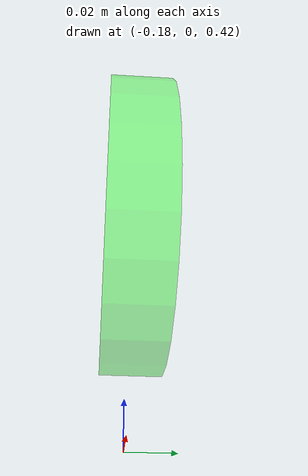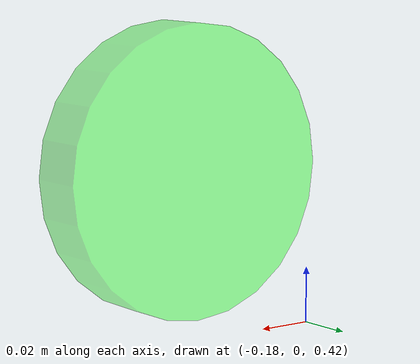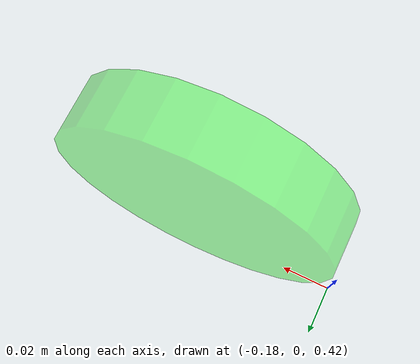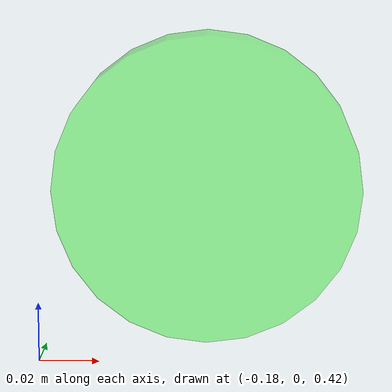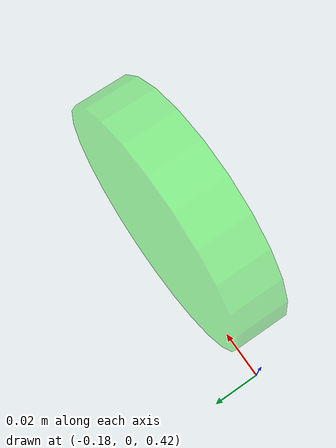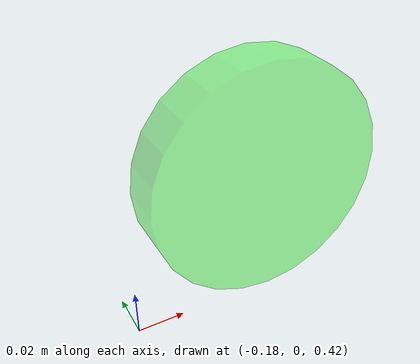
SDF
<?xml version="1.0" ?>
<sdf version="1.5">

  <model name="Green_light">
    <static>true</static>

      <link name='Green_light_source'>

        <pose>-0.124 0 0.48 1.57 0 0</pose>

        <light name='green' type='spot'>
          <pose>0 0 0.0 1.57 0 0</pose>
          <attenuation>
            <range>30</range>
            <linear>0.05</linear>
          </attenuation>
          <diffuse>0.5 1 1 1</diffuse>
          <specular>1 1 1 1</specular>
          <spot>
            <inner_angle>0.3</inner_angle>
            <outer_angle>0.35</outer_angle>
            <falloff>1</falloff>
          </spot>
          <direction>0 0 -1</direction>
        </light>

        <visual name='green'>
          <geometry>
            <cylinder>
              <radius>0.05</radius>
              <length>0.02</length>
            </cylinder>
            <sphere>
              <radius>0.08</radius>
            </sphere>
          </geometry>
          <transparency>0.6</transparency>
          <material>
            <ambient>0 1 0 1</ambient>
            <diffuse>0 1 0 1</diffuse>
            <specular>1 1 1 1</specular>
            <emissive>0 1 0 1</emissive>
          </material>
        </visual>
        </link>

  </model>

</sdf>
